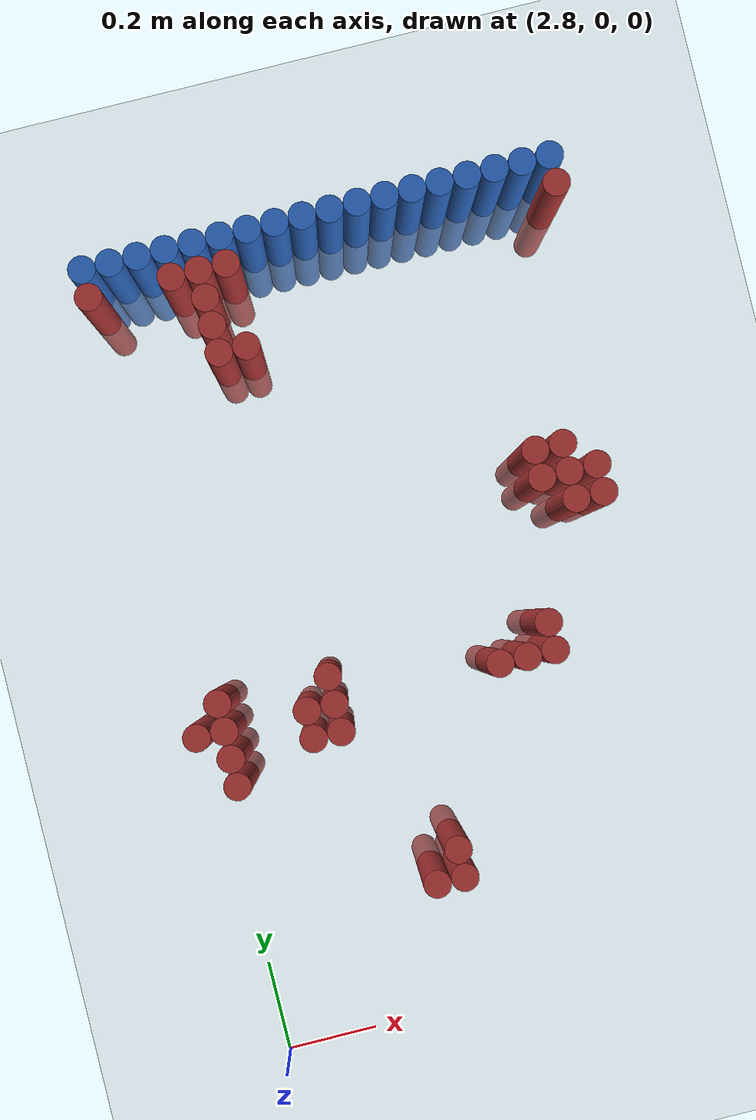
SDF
<sdf version="1.6">
 <world name="default">
  <model name="ground_plane">
   <static>1</static>
   <link name="link">
    <collision name="collision">
     <geometry><plane><normal>0 0 1</normal><size>100 100</size></plane></geometry>
     <surface><friction><ode><mu>100</mu><mu2>50</mu2></ode></friction></surface>
    </collision>
    <visual name="visual">
     <cast_shadows>0</cast_shadows>
     <geometry><plane><normal>0 0 1</normal><size>100 100</size></plane></geometry>
     <material>
      <script><uri>file://media/materials/scripts/gazebo.material</uri><name>Gazebo/Grey</name></script>
     </material>
    </visual>
   </link>
  </model>
  <model name="unit_cylinder_107">
   <static>1</static>
   <pose>2.790000 1.770000 0.000000 0.000000 0.000000 0.000000</pose>
   <link name="link">
    <inertial>
     <mass>1</mass>
     <inertia><ixx>0.145833</ixx><ixy>0</ixy><ixz>0</ixz><iyy>0.145833</iyy><iyz>0</iyz><izz>0.125</izz></inertia>
    </inertial>
    <collision name="collision">
     <geometry><cylinder><radius>0.030000</radius><length>0.5</length></cylinder></geometry>
    </collision>
    <visual name="visual">
     <geometry><cylinder><radius>0.030000</radius><length>0.5</length></cylinder></geometry>
     <material>
      <ambient>0.152000 0.379000 0.720000 1</ambient>
      <diffuse>0.152000 0.379000 0.720000 1</diffuse>
     </material>
     <material>
      <script><name>Gazebo/Grey</name><uri>file://media/materials/scripts/gazebo.material</uri></script>
     </material>
    </visual>
   </link>
  </model>
  <model name="unit_cylinder_108">
   <static>1</static>
   <pose>2.850000 1.770000 0.000000 0.000000 0.000000 0.000000</pose>
   <link name="link">
    <inertial>
     <mass>1</mass>
     <inertia><ixx>0.145833</ixx><ixy>0</ixy><ixz>0</ixz><iyy>0.145833</iyy><iyz>0</iyz><izz>0.125</izz></inertia>
    </inertial>
    <collision name="collision">
     <geometry><cylinder><radius>0.030000</radius><length>0.5</length></cylinder></geometry>
    </collision>
    <visual name="visual">
     <geometry><cylinder><radius>0.030000</radius><length>0.5</length></cylinder></geometry>
     <material>
      <ambient>0.152000 0.379000 0.720000 1</ambient>
      <diffuse>0.152000 0.379000 0.720000 1</diffuse>
     </material>
     <material>
      <script><name>Gazebo/Grey</name><uri>file://media/materials/scripts/gazebo.material</uri></script>
     </material>
    </visual>
   </link>
  </model>
  <model name="unit_cylinder_109">
   <static>1</static>
   <pose>2.910000 1.770000 0.000000 0.000000 0.000000 0.000000</pose>
   <link name="link">
    <inertial>
     <mass>1</mass>
     <inertia><ixx>0.145833</ixx><ixy>0</ixy><ixz>0</ixz><iyy>0.145833</iyy><iyz>0</iyz><izz>0.125</izz></inertia>
    </inertial>
    <collision name="collision">
     <geometry><cylinder><radius>0.030000</radius><length>0.5</length></cylinder></geometry>
    </collision>
    <visual name="visual">
     <geometry><cylinder><radius>0.030000</radius><length>0.5</length></cylinder></geometry>
     <material>
      <ambient>0.152000 0.379000 0.720000 1</ambient>
      <diffuse>0.152000 0.379000 0.720000 1</diffuse>
     </material>
     <material>
      <script><name>Gazebo/Grey</name><uri>file://media/materials/scripts/gazebo.material</uri></script>
     </material>
    </visual>
   </link>
  </model>
  <model name="unit_cylinder_110">
   <static>1</static>
   <pose>2.970000 1.770000 0.000000 0.000000 0.000000 0.000000</pose>
   <link name="link">
    <inertial>
     <mass>1</mass>
     <inertia><ixx>0.145833</ixx><ixy>0</ixy><ixz>0</ixz><iyy>0.145833</iyy><iyz>0</iyz><izz>0.125</izz></inertia>
    </inertial>
    <collision name="collision">
     <geometry><cylinder><radius>0.030000</radius><length>0.5</length></cylinder></geometry>
    </collision>
    <visual name="visual">
     <geometry><cylinder><radius>0.030000</radius><length>0.5</length></cylinder></geometry>
     <material>
      <ambient>0.152000 0.379000 0.720000 1</ambient>
      <diffuse>0.152000 0.379000 0.720000 1</diffuse>
     </material>
     <material>
      <script><name>Gazebo/Grey</name><uri>file://media/materials/scripts/gazebo.material</uri></script>
     </material>
    </visual>
   </link>
  </model>
  <model name="unit_cylinder_111">
   <static>1</static>
   <pose>3.030000 1.770000 0.000000 0.000000 0.000000 0.000000</pose>
   <link name="link">
    <inertial>
     <mass>1</mass>
     <inertia><ixx>0.145833</ixx><ixy>0</ixy><ixz>0</ixz><iyy>0.145833</iyy><iyz>0</iyz><izz>0.125</izz></inertia>
    </inertial>
    <collision name="collision">
     <geometry><cylinder><radius>0.030000</radius><length>0.5</length></cylinder></geometry>
    </collision>
    <visual name="visual">
     <geometry><cylinder><radius>0.030000</radius><length>0.5</length></cylinder></geometry>
     <material>
      <ambient>0.152000 0.379000 0.720000 1</ambient>
      <diffuse>0.152000 0.379000 0.720000 1</diffuse>
     </material>
     <material>
      <script><name>Gazebo/Grey</name><uri>file://media/materials/scripts/gazebo.material</uri></script>
     </material>
    </visual>
   </link>
  </model>
  <model name="unit_cylinder_112">
   <static>1</static>
   <pose>3.090000 1.770000 0.000000 0.000000 0.000000 0.000000</pose>
   <link name="link">
    <inertial>
     <mass>1</mass>
     <inertia><ixx>0.145833</ixx><ixy>0</ixy><ixz>0</ixz><iyy>0.145833</iyy><iyz>0</iyz><izz>0.125</izz></inertia>
    </inertial>
    <collision name="collision">
     <geometry><cylinder><radius>0.030000</radius><length>0.5</length></cylinder></geometry>
    </collision>
    <visual name="visual">
     <geometry><cylinder><radius>0.030000</radius><length>0.5</length></cylinder></geometry>
     <material>
      <ambient>0.152000 0.379000 0.720000 1</ambient>
      <diffuse>0.152000 0.379000 0.720000 1</diffuse>
     </material>
     <material>
      <script><name>Gazebo/Grey</name><uri>file://media/materials/scripts/gazebo.material</uri></script>
     </material>
    </visual>
   </link>
  </model>
  <model name="unit_cylinder_113">
   <static>1</static>
   <pose>3.150000 1.770000 0.000000 0.000000 0.000000 0.000000</pose>
   <link name="link">
    <inertial>
     <mass>1</mass>
     <inertia><ixx>0.145833</ixx><ixy>0</ixy><ixz>0</ixz><iyy>0.145833</iyy><iyz>0</iyz><izz>0.125</izz></inertia>
    </inertial>
    <collision name="collision">
     <geometry><cylinder><radius>0.030000</radius><length>0.5</length></cylinder></geometry>
    </collision>
    <visual name="visual">
     <geometry><cylinder><radius>0.030000</radius><length>0.5</length></cylinder></geometry>
     <material>
      <ambient>0.152000 0.379000 0.720000 1</ambient>
      <diffuse>0.152000 0.379000 0.720000 1</diffuse>
     </material>
     <material>
      <script><name>Gazebo/Grey</name><uri>file://media/materials/scripts/gazebo.material</uri></script>
     </material>
    </visual>
   </link>
  </model>
  <model name="unit_cylinder_114">
   <static>1</static>
   <pose>3.210000 1.770000 0.000000 0.000000 0.000000 0.000000</pose>
   <link name="link">
    <inertial>
     <mass>1</mass>
     <inertia><ixx>0.145833</ixx><ixy>0</ixy><ixz>0</ixz><iyy>0.145833</iyy><iyz>0</iyz><izz>0.125</izz></inertia>
    </inertial>
    <collision name="collision">
     <geometry><cylinder><radius>0.030000</radius><length>0.5</length></cylinder></geometry>
    </collision>
    <visual name="visual">
     <geometry><cylinder><radius>0.030000</radius><length>0.5</length></cylinder></geometry>
     <material>
      <ambient>0.152000 0.379000 0.720000 1</ambient>
      <diffuse>0.152000 0.379000 0.720000 1</diffuse>
     </material>
     <material>
      <script><name>Gazebo/Grey</name><uri>file://media/materials/scripts/gazebo.material</uri></script>
     </material>
    </visual>
   </link>
  </model>
  <model name="unit_cylinder_115">
   <static>1</static>
   <pose>3.270000 1.770000 0.000000 0.000000 0.000000 0.000000</pose>
   <link name="link">
    <inertial>
     <mass>1</mass>
     <inertia><ixx>0.145833</ixx><ixy>0</ixy><ixz>0</ixz><iyy>0.145833</iyy><iyz>0</iyz><izz>0.125</izz></inertia>
    </inertial>
    <collision name="collision">
     <geometry><cylinder><radius>0.030000</radius><length>0.5</length></cylinder></geometry>
    </collision>
    <visual name="visual">
     <geometry><cylinder><radius>0.030000</radius><length>0.5</length></cylinder></geometry>
     <material>
      <ambient>0.152000 0.379000 0.720000 1</ambient>
      <diffuse>0.152000 0.379000 0.720000 1</diffuse>
     </material>
     <material>
      <script><name>Gazebo/Grey</name><uri>file://media/materials/scripts/gazebo.material</uri></script>
     </material>
    </visual>
   </link>
  </model>
  <model name="unit_cylinder_116">
   <static>1</static>
   <pose>3.330000 1.770000 0.000000 0.000000 0.000000 0.000000</pose>
   <link name="link">
    <inertial>
     <mass>1</mass>
     <inertia><ixx>0.145833</ixx><ixy>0</ixy><ixz>0</ixz><iyy>0.145833</iyy><iyz>0</iyz><izz>0.125</izz></inertia>
    </inertial>
    <collision name="collision">
     <geometry><cylinder><radius>0.030000</radius><length>0.5</length></cylinder></geometry>
    </collision>
    <visual name="visual">
     <geometry><cylinder><radius>0.030000</radius><length>0.5</length></cylinder></geometry>
     <material>
      <ambient>0.152000 0.379000 0.720000 1</ambient>
      <diffuse>0.152000 0.379000 0.720000 1</diffuse>
     </material>
     <material>
      <script><name>Gazebo/Grey</name><uri>file://media/materials/scripts/gazebo.material</uri></script>
     </material>
    </visual>
   </link>
  </model>
  <model name="unit_cylinder_117">
   <static>1</static>
   <pose>3.390000 1.770000 0.000000 0.000000 0.000000 0.000000</pose>
   <link name="link">
    <inertial>
     <mass>1</mass>
     <inertia><ixx>0.145833</ixx><ixy>0</ixy><ixz>0</ixz><iyy>0.145833</iyy><iyz>0</iyz><izz>0.125</izz></inertia>
    </inertial>
    <collision name="collision">
     <geometry><cylinder><radius>0.030000</radius><length>0.5</length></cylinder></geometry>
    </collision>
    <visual name="visual">
     <geometry><cylinder><radius>0.030000</radius><length>0.5</length></cylinder></geometry>
     <material>
      <ambient>0.152000 0.379000 0.720000 1</ambient>
      <diffuse>0.152000 0.379000 0.720000 1</diffuse>
     </material>
     <material>
      <script><name>Gazebo/Grey</name><uri>file://media/materials/scripts/gazebo.material</uri></script>
     </material>
    </visual>
   </link>
  </model>
  <model name="unit_cylinder_118">
   <static>1</static>
   <pose>3.450000 1.770000 0.000000 0.000000 0.000000 0.000000</pose>
   <link name="link">
    <inertial>
     <mass>1</mass>
     <inertia><ixx>0.145833</ixx><ixy>0</ixy><ixz>0</ixz><iyy>0.145833</iyy><iyz>0</iyz><izz>0.125</izz></inertia>
    </inertial>
    <collision name="collision">
     <geometry><cylinder><radius>0.030000</radius><length>0.5</length></cylinder></geometry>
    </collision>
    <visual name="visual">
     <geometry><cylinder><radius>0.030000</radius><length>0.5</length></cylinder></geometry>
     <material>
      <ambient>0.152000 0.379000 0.720000 1</ambient>
      <diffuse>0.152000 0.379000 0.720000 1</diffuse>
     </material>
     <material>
      <script><name>Gazebo/Grey</name><uri>file://media/materials/scripts/gazebo.material</uri></script>
     </material>
    </visual>
   </link>
  </model>
  <model name="unit_cylinder_119">
   <static>1</static>
   <pose>3.510000 1.770000 0.000000 0.000000 0.000000 0.000000</pose>
   <link name="link">
    <inertial>
     <mass>1</mass>
     <inertia><ixx>0.145833</ixx><ixy>0</ixy><ixz>0</ixz><iyy>0.145833</iyy><iyz>0</iyz><izz>0.125</izz></inertia>
    </inertial>
    <collision name="collision">
     <geometry><cylinder><radius>0.030000</radius><length>0.5</length></cylinder></geometry>
    </collision>
    <visual name="visual">
     <geometry><cylinder><radius>0.030000</radius><length>0.5</length></cylinder></geometry>
     <material>
      <ambient>0.152000 0.379000 0.720000 1</ambient>
      <diffuse>0.152000 0.379000 0.720000 1</diffuse>
     </material>
     <material>
      <script><name>Gazebo/Grey</name><uri>file://media/materials/scripts/gazebo.material</uri></script>
     </material>
    </visual>
   </link>
  </model>
  <model name="unit_cylinder_120">
   <static>1</static>
   <pose>3.570000 1.770000 0.000000 0.000000 0.000000 0.000000</pose>
   <link name="link">
    <inertial>
     <mass>1</mass>
     <inertia><ixx>0.145833</ixx><ixy>0</ixy><ixz>0</ixz><iyy>0.145833</iyy><iyz>0</iyz><izz>0.125</izz></inertia>
    </inertial>
    <collision name="collision">
     <geometry><cylinder><radius>0.030000</radius><length>0.5</length></cylinder></geometry>
    </collision>
    <visual name="visual">
     <geometry><cylinder><radius>0.030000</radius><length>0.5</length></cylinder></geometry>
     <material>
      <ambient>0.152000 0.379000 0.720000 1</ambient>
      <diffuse>0.152000 0.379000 0.720000 1</diffuse>
     </material>
     <material>
      <script><name>Gazebo/Grey</name><uri>file://media/materials/scripts/gazebo.material</uri></script>
     </material>
    </visual>
   </link>
  </model>
  <model name="unit_cylinder_121">
   <static>1</static>
   <pose>3.630000 1.770000 0.000000 0.000000 0.000000 0.000000</pose>
   <link name="link">
    <inertial>
     <mass>1</mass>
     <inertia><ixx>0.145833</ixx><ixy>0</ixy><ixz>0</ixz><iyy>0.145833</iyy><iyz>0</iyz><izz>0.125</izz></inertia>
    </inertial>
    <collision name="collision">
     <geometry><cylinder><radius>0.030000</radius><length>0.5</length></cylinder></geometry>
    </collision>
    <visual name="visual">
     <geometry><cylinder><radius>0.030000</radius><length>0.5</length></cylinder></geometry>
     <material>
      <ambient>0.152000 0.379000 0.720000 1</ambient>
      <diffuse>0.152000 0.379000 0.720000 1</diffuse>
     </material>
     <material>
      <script><name>Gazebo/Grey</name><uri>file://media/materials/scripts/gazebo.material</uri></script>
     </material>
    </visual>
   </link>
  </model>
  <model name="unit_cylinder_122">
   <static>1</static>
   <pose>3.690000 1.770000 0.000000 0.000000 0.000000 0.000000</pose>
   <link name="link">
    <inertial>
     <mass>1</mass>
     <inertia><ixx>0.145833</ixx><ixy>0</ixy><ixz>0</ixz><iyy>0.145833</iyy><iyz>0</iyz><izz>0.125</izz></inertia>
    </inertial>
    <collision name="collision">
     <geometry><cylinder><radius>0.030000</radius><length>0.5</length></cylinder></geometry>
    </collision>
    <visual name="visual">
     <geometry><cylinder><radius>0.030000</radius><length>0.5</length></cylinder></geometry>
     <material>
      <ambient>0.152000 0.379000 0.720000 1</ambient>
      <diffuse>0.152000 0.379000 0.720000 1</diffuse>
     </material>
     <material>
      <script><name>Gazebo/Grey</name><uri>file://media/materials/scripts/gazebo.material</uri></script>
     </material>
    </visual>
   </link>
  </model>
  <model name="unit_cylinder_123">
   <static>1</static>
   <pose>3.750000 1.770000 0.000000 0.000000 0.000000 0.000000</pose>
   <link name="link">
    <inertial>
     <mass>1</mass>
     <inertia><ixx>0.145833</ixx><ixy>0</ixy><ixz>0</ixz><iyy>0.145833</iyy><iyz>0</iyz><izz>0.125</izz></inertia>
    </inertial>
    <collision name="collision">
     <geometry><cylinder><radius>0.030000</radius><length>0.5</length></cylinder></geometry>
    </collision>
    <visual name="visual">
     <geometry><cylinder><radius>0.030000</radius><length>0.5</length></cylinder></geometry>
     <material>
      <ambient>0.152000 0.379000 0.720000 1</ambient>
      <diffuse>0.152000 0.379000 0.720000 1</diffuse>
     </material>
     <material>
      <script><name>Gazebo/Grey</name><uri>file://media/materials/scripts/gazebo.material</uri></script>
     </material>
    </visual>
   </link>
  </model>
  <model name="unit_cylinder_124">
   <static>1</static>
   <pose>3.810000 1.770000 0.000000 0.000000 0.000000 0.000000</pose>
   <link name="link">
    <inertial>
     <mass>1</mass>
     <inertia><ixx>0.145833</ixx><ixy>0</ixy><ixz>0</ixz><iyy>0.145833</iyy><iyz>0</iyz><izz>0.125</izz></inertia>
    </inertial>
    <collision name="collision">
     <geometry><cylinder><radius>0.030000</radius><length>0.5</length></cylinder></geometry>
    </collision>
    <visual name="visual">
     <geometry><cylinder><radius>0.030000</radius><length>0.5</length></cylinder></geometry>
     <material>
      <ambient>0.152000 0.379000 0.720000 1</ambient>
      <diffuse>0.152000 0.379000 0.720000 1</diffuse>
     </material>
     <material>
      <script><name>Gazebo/Grey</name><uri>file://media/materials/scripts/gazebo.material</uri></script>
     </material>
    </visual>
   </link>
  </model>
  <model name="unit_cylinder_128">
   <static>1</static>
   <pose>2.790000 1.710000 0.000000 0.000000 0.000000 0.000000</pose>
   <link name="link">
    <inertial>
     <mass>1</mass>
     <inertia><ixx>0.145833</ixx><ixy>0</ixy><ixz>0</ixz><iyy>0.145833</iyy><iyz>0</iyz><izz>0.125</izz></inertia>
    </inertial>
    <collision name="collision">
     <geometry><cylinder><radius>0.030000</radius><length>0.5</length></cylinder></geometry>
    </collision>
    <visual name="visual">
     <geometry><cylinder><radius>0.030000</radius><length>0.5</length></cylinder></geometry>
     <material>
      <ambient>0.648000 0.192000 0.192000 1</ambient>
      <diffuse>0.648000 0.192000 0.192000 1</diffuse>
     </material>
     <material>
      <script><name>Gazebo/Grey</name><uri>file://media/materials/scripts/gazebo.material</uri></script>
     </material>
    </visual>
   </link>
  </model>
  <model name="unit_cylinder_129">
   <static>1</static>
   <pose>2.970000 1.710000 0.000000 0.000000 0.000000 0.000000</pose>
   <link name="link">
    <inertial>
     <mass>1</mass>
     <inertia><ixx>0.145833</ixx><ixy>0</ixy><ixz>0</ixz><iyy>0.145833</iyy><iyz>0</iyz><izz>0.125</izz></inertia>
    </inertial>
    <collision name="collision">
     <geometry><cylinder><radius>0.030000</radius><length>0.5</length></cylinder></geometry>
    </collision>
    <visual name="visual">
     <geometry><cylinder><radius>0.030000</radius><length>0.5</length></cylinder></geometry>
     <material>
      <ambient>0.648000 0.192000 0.192000 1</ambient>
      <diffuse>0.648000 0.192000 0.192000 1</diffuse>
     </material>
     <material>
      <script><name>Gazebo/Grey</name><uri>file://media/materials/scripts/gazebo.material</uri></script>
     </material>
    </visual>
   </link>
  </model>
  <model name="unit_cylinder_130">
   <static>1</static>
   <pose>3.030000 1.710000 0.000000 0.000000 0.000000 0.000000</pose>
   <link name="link">
    <inertial>
     <mass>1</mass>
     <inertia><ixx>0.145833</ixx><ixy>0</ixy><ixz>0</ixz><iyy>0.145833</iyy><iyz>0</iyz><izz>0.125</izz></inertia>
    </inertial>
    <collision name="collision">
     <geometry><cylinder><radius>0.030000</radius><length>0.5</length></cylinder></geometry>
    </collision>
    <visual name="visual">
     <geometry><cylinder><radius>0.030000</radius><length>0.5</length></cylinder></geometry>
     <material>
      <ambient>0.648000 0.192000 0.192000 1</ambient>
      <diffuse>0.648000 0.192000 0.192000 1</diffuse>
     </material>
     <material>
      <script><name>Gazebo/Grey</name><uri>file://media/materials/scripts/gazebo.material</uri></script>
     </material>
    </visual>
   </link>
  </model>
  <model name="unit_cylinder_131">
   <static>1</static>
   <pose>3.090000 1.710000 0.000000 0.000000 0.000000 0.000000</pose>
   <link name="link">
    <inertial>
     <mass>1</mass>
     <inertia><ixx>0.145833</ixx><ixy>0</ixy><ixz>0</ixz><iyy>0.145833</iyy><iyz>0</iyz><izz>0.125</izz></inertia>
    </inertial>
    <collision name="collision">
     <geometry><cylinder><radius>0.030000</radius><length>0.5</length></cylinder></geometry>
    </collision>
    <visual name="visual">
     <geometry><cylinder><radius>0.030000</radius><length>0.5</length></cylinder></geometry>
     <material>
      <ambient>0.648000 0.192000 0.192000 1</ambient>
      <diffuse>0.648000 0.192000 0.192000 1</diffuse>
     </material>
     <material>
      <script><name>Gazebo/Grey</name><uri>file://media/materials/scripts/gazebo.material</uri></script>
     </material>
    </visual>
   </link>
  </model>
  <model name="unit_cylinder_132">
   <static>1</static>
   <pose>3.810000 1.710000 0.000000 0.000000 0.000000 0.000000</pose>
   <link name="link">
    <inertial>
     <mass>1</mass>
     <inertia><ixx>0.145833</ixx><ixy>0</ixy><ixz>0</ixz><iyy>0.145833</iyy><iyz>0</iyz><izz>0.125</izz></inertia>
    </inertial>
    <collision name="collision">
     <geometry><cylinder><radius>0.030000</radius><length>0.5</length></cylinder></geometry>
    </collision>
    <visual name="visual">
     <geometry><cylinder><radius>0.030000</radius><length>0.5</length></cylinder></geometry>
     <material>
      <ambient>0.648000 0.192000 0.192000 1</ambient>
      <diffuse>0.648000 0.192000 0.192000 1</diffuse>
     </material>
     <material>
      <script><name>Gazebo/Grey</name><uri>file://media/materials/scripts/gazebo.material</uri></script>
     </material>
    </visual>
   </link>
  </model>
  <model name="unit_cylinder_135">
   <static>1</static>
   <pose>3.030000 1.650000 0.000000 0.000000 0.000000 0.000000</pose>
   <link name="link">
    <inertial>
     <mass>1</mass>
     <inertia><ixx>0.145833</ixx><ixy>0</ixy><ixz>0</ixz><iyy>0.145833</iyy><iyz>0</iyz><izz>0.125</izz></inertia>
    </inertial>
    <collision name="collision">
     <geometry><cylinder><radius>0.030000</radius><length>0.5</length></cylinder></geometry>
    </collision>
    <visual name="visual">
     <geometry><cylinder><radius>0.030000</radius><length>0.5</length></cylinder></geometry>
     <material>
      <ambient>0.648000 0.192000 0.192000 1</ambient>
      <diffuse>0.648000 0.192000 0.192000 1</diffuse>
     </material>
     <material>
      <script><name>Gazebo/Grey</name><uri>file://media/materials/scripts/gazebo.material</uri></script>
     </material>
    </visual>
   </link>
  </model>
  <model name="unit_cylinder_138">
   <static>1</static>
   <pose>3.030000 1.590000 0.000000 0.000000 0.000000 0.000000</pose>
   <link name="link">
    <inertial>
     <mass>1</mass>
     <inertia><ixx>0.145833</ixx><ixy>0</ixy><ixz>0</ixz><iyy>0.145833</iyy><iyz>0</iyz><izz>0.125</izz></inertia>
    </inertial>
    <collision name="collision">
     <geometry><cylinder><radius>0.030000</radius><length>0.5</length></cylinder></geometry>
    </collision>
    <visual name="visual">
     <geometry><cylinder><radius>0.030000</radius><length>0.5</length></cylinder></geometry>
     <material>
      <ambient>0.648000 0.192000 0.192000 1</ambient>
      <diffuse>0.648000 0.192000 0.192000 1</diffuse>
     </material>
     <material>
      <script><name>Gazebo/Grey</name><uri>file://media/materials/scripts/gazebo.material</uri></script>
     </material>
    </visual>
   </link>
  </model>
  <model name="unit_cylinder_141">
   <static>1</static>
   <pose>3.030000 1.530000 0.000000 0.000000 0.000000 0.000000</pose>
   <link name="link">
    <inertial>
     <mass>1</mass>
     <inertia><ixx>0.145833</ixx><ixy>0</ixy><ixz>0</ixz><iyy>0.145833</iyy><iyz>0</iyz><izz>0.125</izz></inertia>
    </inertial>
    <collision name="collision">
     <geometry><cylinder><radius>0.030000</radius><length>0.5</length></cylinder></geometry>
    </collision>
    <visual name="visual">
     <geometry><cylinder><radius>0.030000</radius><length>0.5</length></cylinder></geometry>
     <material>
      <ambient>0.648000 0.192000 0.192000 1</ambient>
      <diffuse>0.648000 0.192000 0.192000 1</diffuse>
     </material>
     <material>
      <script><name>Gazebo/Grey</name><uri>file://media/materials/scripts/gazebo.material</uri></script>
     </material>
    </visual>
   </link>
  </model>
  <model name="unit_cylinder_142">
   <static>1</static>
   <pose>3.090000 1.530000 0.000000 0.000000 0.000000 0.000000</pose>
   <link name="link">
    <inertial>
     <mass>1</mass>
     <inertia><ixx>0.145833</ixx><ixy>0</ixy><ixz>0</ixz><iyy>0.145833</iyy><iyz>0</iyz><izz>0.125</izz></inertia>
    </inertial>
    <collision name="collision">
     <geometry><cylinder><radius>0.030000</radius><length>0.5</length></cylinder></geometry>
    </collision>
    <visual name="visual">
     <geometry><cylinder><radius>0.030000</radius><length>0.5</length></cylinder></geometry>
     <material>
      <ambient>0.648000 0.192000 0.192000 1</ambient>
      <diffuse>0.648000 0.192000 0.192000 1</diffuse>
     </material>
     <material>
      <script><name>Gazebo/Grey</name><uri>file://media/materials/scripts/gazebo.material</uri></script>
     </material>
    </visual>
   </link>
  </model>
  <model name="unit_cylinder_145">
   <static>1</static>
   <pose>3.630000 1.170000 0.000000 0.000000 0.000000 0.000000</pose>
   <link name="link">
    <inertial>
     <mass>1</mass>
     <inertia><ixx>0.145833</ixx><ixy>0</ixy><ixz>0</ixz><iyy>0.145833</iyy><iyz>0</iyz><izz>0.125</izz></inertia>
    </inertial>
    <collision name="collision">
     <geometry><cylinder><radius>0.030000</radius><length>0.5</length></cylinder></geometry>
    </collision>
    <visual name="visual">
     <geometry><cylinder><radius>0.030000</radius><length>0.5</length></cylinder></geometry>
     <material>
      <ambient>0.648000 0.192000 0.192000 1</ambient>
      <diffuse>0.648000 0.192000 0.192000 1</diffuse>
     </material>
     <material>
      <script><name>Gazebo/Grey</name><uri>file://media/materials/scripts/gazebo.material</uri></script>
     </material>
    </visual>
   </link>
  </model>
  <model name="unit_cylinder_146">
   <static>1</static>
   <pose>3.690000 1.170000 0.000000 0.000000 0.000000 0.000000</pose>
   <link name="link">
    <inertial>
     <mass>1</mass>
     <inertia><ixx>0.145833</ixx><ixy>0</ixy><ixz>0</ixz><iyy>0.145833</iyy><iyz>0</iyz><izz>0.125</izz></inertia>
    </inertial>
    <collision name="collision">
     <geometry><cylinder><radius>0.030000</radius><length>0.5</length></cylinder></geometry>
    </collision>
    <visual name="visual">
     <geometry><cylinder><radius>0.030000</radius><length>0.5</length></cylinder></geometry>
     <material>
      <ambient>0.648000 0.192000 0.192000 1</ambient>
      <diffuse>0.648000 0.192000 0.192000 1</diffuse>
     </material>
     <material>
      <script><name>Gazebo/Grey</name><uri>file://media/materials/scripts/gazebo.material</uri></script>
     </material>
    </visual>
   </link>
  </model>
  <model name="unit_cylinder_147">
   <static>1</static>
   <pose>3.630000 1.110000 0.000000 0.000000 0.000000 0.000000</pose>
   <link name="link">
    <inertial>
     <mass>1</mass>
     <inertia><ixx>0.145833</ixx><ixy>0</ixy><ixz>0</ixz><iyy>0.145833</iyy><iyz>0</iyz><izz>0.125</izz></inertia>
    </inertial>
    <collision name="collision">
     <geometry><cylinder><radius>0.030000</radius><length>0.5</length></cylinder></geometry>
    </collision>
    <visual name="visual">
     <geometry><cylinder><radius>0.030000</radius><length>0.5</length></cylinder></geometry>
     <material>
      <ambient>0.648000 0.192000 0.192000 1</ambient>
      <diffuse>0.648000 0.192000 0.192000 1</diffuse>
     </material>
     <material>
      <script><name>Gazebo/Grey</name><uri>file://media/materials/scripts/gazebo.material</uri></script>
     </material>
    </visual>
   </link>
  </model>
  <model name="unit_cylinder_148">
   <static>1</static>
   <pose>3.690000 1.110000 0.000000 0.000000 0.000000 0.000000</pose>
   <link name="link">
    <inertial>
     <mass>1</mass>
     <inertia><ixx>0.145833</ixx><ixy>0</ixy><ixz>0</ixz><iyy>0.145833</iyy><iyz>0</iyz><izz>0.125</izz></inertia>
    </inertial>
    <collision name="collision">
     <geometry><cylinder><radius>0.030000</radius><length>0.5</length></cylinder></geometry>
    </collision>
    <visual name="visual">
     <geometry><cylinder><radius>0.030000</radius><length>0.5</length></cylinder></geometry>
     <material>
      <ambient>0.648000 0.192000 0.192000 1</ambient>
      <diffuse>0.648000 0.192000 0.192000 1</diffuse>
     </material>
     <material>
      <script><name>Gazebo/Grey</name><uri>file://media/materials/scripts/gazebo.material</uri></script>
     </material>
    </visual>
   </link>
  </model>
  <model name="unit_cylinder_149">
   <static>1</static>
   <pose>3.750000 1.110000 0.000000 0.000000 0.000000 0.000000</pose>
   <link name="link">
    <inertial>
     <mass>1</mass>
     <inertia><ixx>0.145833</ixx><ixy>0</ixy><ixz>0</ixz><iyy>0.145833</iyy><iyz>0</iyz><izz>0.125</izz></inertia>
    </inertial>
    <collision name="collision">
     <geometry><cylinder><radius>0.030000</radius><length>0.5</length></cylinder></geometry>
    </collision>
    <visual name="visual">
     <geometry><cylinder><radius>0.030000</radius><length>0.5</length></cylinder></geometry>
     <material>
      <ambient>0.648000 0.192000 0.192000 1</ambient>
      <diffuse>0.648000 0.192000 0.192000 1</diffuse>
     </material>
     <material>
      <script><name>Gazebo/Grey</name><uri>file://media/materials/scripts/gazebo.material</uri></script>
     </material>
    </visual>
   </link>
  </model>
  <model name="unit_cylinder_150">
   <static>1</static>
   <pose>3.690000 1.050000 0.000000 0.000000 0.000000 0.000000</pose>
   <link name="link">
    <inertial>
     <mass>1</mass>
     <inertia><ixx>0.145833</ixx><ixy>0</ixy><ixz>0</ixz><iyy>0.145833</iyy><iyz>0</iyz><izz>0.125</izz></inertia>
    </inertial>
    <collision name="collision">
     <geometry><cylinder><radius>0.030000</radius><length>0.5</length></cylinder></geometry>
    </collision>
    <visual name="visual">
     <geometry><cylinder><radius>0.030000</radius><length>0.5</length></cylinder></geometry>
     <material>
      <ambient>0.648000 0.192000 0.192000 1</ambient>
      <diffuse>0.648000 0.192000 0.192000 1</diffuse>
     </material>
     <material>
      <script><name>Gazebo/Grey</name><uri>file://media/materials/scripts/gazebo.material</uri></script>
     </material>
    </visual>
   </link>
  </model>
  <model name="unit_cylinder_151">
   <static>1</static>
   <pose>3.750000 1.050000 0.000000 0.000000 0.000000 0.000000</pose>
   <link name="link">
    <inertial>
     <mass>1</mass>
     <inertia><ixx>0.145833</ixx><ixy>0</ixy><ixz>0</ixz><iyy>0.145833</iyy><iyz>0</iyz><izz>0.125</izz></inertia>
    </inertial>
    <collision name="collision">
     <geometry><cylinder><radius>0.030000</radius><length>0.5</length></cylinder></geometry>
    </collision>
    <visual name="visual">
     <geometry><cylinder><radius>0.030000</radius><length>0.5</length></cylinder></geometry>
     <material>
      <ambient>0.648000 0.192000 0.192000 1</ambient>
      <diffuse>0.648000 0.192000 0.192000 1</diffuse>
     </material>
     <material>
      <script><name>Gazebo/Grey</name><uri>file://media/materials/scripts/gazebo.material</uri></script>
     </material>
    </visual>
   </link>
  </model>
  <model name="unit_cylinder_159">
   <static>1</static>
   <pose>2.850000 0.810000 0.000000 0.000000 0.000000 0.000000</pose>
   <link name="link">
    <inertial>
     <mass>1</mass>
     <inertia><ixx>0.145833</ixx><ixy>0</ixy><ixz>0</ixz><iyy>0.145833</iyy><iyz>0</iyz><izz>0.125</izz></inertia>
    </inertial>
    <collision name="collision">
     <geometry><cylinder><radius>0.030000</radius><length>0.5</length></cylinder></geometry>
    </collision>
    <visual name="visual">
     <geometry><cylinder><radius>0.030000</radius><length>0.5</length></cylinder></geometry>
     <material>
      <ambient>0.648000 0.192000 0.192000 1</ambient>
      <diffuse>0.648000 0.192000 0.192000 1</diffuse>
     </material>
     <material>
      <script><name>Gazebo/Grey</name><uri>file://media/materials/scripts/gazebo.material</uri></script>
     </material>
    </visual>
   </link>
  </model>
  <model name="unit_cylinder_160">
   <static>1</static>
   <pose>3.090000 0.810000 0.000000 0.000000 0.000000 0.000000</pose>
   <link name="link">
    <inertial>
     <mass>1</mass>
     <inertia><ixx>0.145833</ixx><ixy>0</ixy><ixz>0</ixz><iyy>0.145833</iyy><iyz>0</iyz><izz>0.125</izz></inertia>
    </inertial>
    <collision name="collision">
     <geometry><cylinder><radius>0.030000</radius><length>0.5</length></cylinder></geometry>
    </collision>
    <visual name="visual">
     <geometry><cylinder><radius>0.030000</radius><length>0.5</length></cylinder></geometry>
     <material>
      <ambient>0.648000 0.192000 0.192000 1</ambient>
      <diffuse>0.648000 0.192000 0.192000 1</diffuse>
     </material>
     <material>
      <script><name>Gazebo/Grey</name><uri>file://media/materials/scripts/gazebo.material</uri></script>
     </material>
    </visual>
   </link>
  </model>
  <model name="unit_cylinder_161">
   <static>1</static>
   <pose>3.570000 0.810000 0.000000 0.000000 0.000000 0.000000</pose>
   <link name="link">
    <inertial>
     <mass>1</mass>
     <inertia><ixx>0.145833</ixx><ixy>0</ixy><ixz>0</ixz><iyy>0.145833</iyy><iyz>0</iyz><izz>0.125</izz></inertia>
    </inertial>
    <collision name="collision">
     <geometry><cylinder><radius>0.030000</radius><length>0.5</length></cylinder></geometry>
    </collision>
    <visual name="visual">
     <geometry><cylinder><radius>0.030000</radius><length>0.5</length></cylinder></geometry>
     <material>
      <ambient>0.648000 0.192000 0.192000 1</ambient>
      <diffuse>0.648000 0.192000 0.192000 1</diffuse>
     </material>
     <material>
      <script><name>Gazebo/Grey</name><uri>file://media/materials/scripts/gazebo.material</uri></script>
     </material>
    </visual>
   </link>
  </model>
  <model name="unit_cylinder_164">
   <static>1</static>
   <pose>2.790000 0.750000 0.000000 0.000000 0.000000 0.000000</pose>
   <link name="link">
    <inertial>
     <mass>1</mass>
     <inertia><ixx>0.145833</ixx><ixy>0</ixy><ixz>0</ixz><iyy>0.145833</iyy><iyz>0</iyz><izz>0.125</izz></inertia>
    </inertial>
    <collision name="collision">
     <geometry><cylinder><radius>0.030000</radius><length>0.5</length></cylinder></geometry>
    </collision>
    <visual name="visual">
     <geometry><cylinder><radius>0.030000</radius><length>0.5</length></cylinder></geometry>
     <material>
      <ambient>0.648000 0.192000 0.192000 1</ambient>
      <diffuse>0.648000 0.192000 0.192000 1</diffuse>
     </material>
     <material>
      <script><name>Gazebo/Grey</name><uri>file://media/materials/scripts/gazebo.material</uri></script>
     </material>
    </visual>
   </link>
  </model>
  <model name="unit_cylinder_165">
   <static>1</static>
   <pose>2.850000 0.750000 0.000000 0.000000 0.000000 0.000000</pose>
   <link name="link">
    <inertial>
     <mass>1</mass>
     <inertia><ixx>0.145833</ixx><ixy>0</ixy><ixz>0</ixz><iyy>0.145833</iyy><iyz>0</iyz><izz>0.125</izz></inertia>
    </inertial>
    <collision name="collision">
     <geometry><cylinder><radius>0.030000</radius><length>0.5</length></cylinder></geometry>
    </collision>
    <visual name="visual">
     <geometry><cylinder><radius>0.030000</radius><length>0.5</length></cylinder></geometry>
     <material>
      <ambient>0.648000 0.192000 0.192000 1</ambient>
      <diffuse>0.648000 0.192000 0.192000 1</diffuse>
     </material>
     <material>
      <script><name>Gazebo/Grey</name><uri>file://media/materials/scripts/gazebo.material</uri></script>
     </material>
    </visual>
   </link>
  </model>
  <model name="unit_cylinder_166">
   <static>1</static>
   <pose>3.030000 0.750000 0.000000 0.000000 0.000000 0.000000</pose>
   <link name="link">
    <inertial>
     <mass>1</mass>
     <inertia><ixx>0.145833</ixx><ixy>0</ixy><ixz>0</ixz><iyy>0.145833</iyy><iyz>0</iyz><izz>0.125</izz></inertia>
    </inertial>
    <collision name="collision">
     <geometry><cylinder><radius>0.030000</radius><length>0.5</length></cylinder></geometry>
    </collision>
    <visual name="visual">
     <geometry><cylinder><radius>0.030000</radius><length>0.5</length></cylinder></geometry>
     <material>
      <ambient>0.648000 0.192000 0.192000 1</ambient>
      <diffuse>0.648000 0.192000 0.192000 1</diffuse>
     </material>
     <material>
      <script><name>Gazebo/Grey</name><uri>file://media/materials/scripts/gazebo.material</uri></script>
     </material>
    </visual>
   </link>
  </model>
  <model name="unit_cylinder_167">
   <static>1</static>
   <pose>3.090000 0.750000 0.000000 0.000000 0.000000 0.000000</pose>
   <link name="link">
    <inertial>
     <mass>1</mass>
     <inertia><ixx>0.145833</ixx><ixy>0</ixy><ixz>0</ixz><iyy>0.145833</iyy><iyz>0</iyz><izz>0.125</izz></inertia>
    </inertial>
    <collision name="collision">
     <geometry><cylinder><radius>0.030000</radius><length>0.5</length></cylinder></geometry>
    </collision>
    <visual name="visual">
     <geometry><cylinder><radius>0.030000</radius><length>0.5</length></cylinder></geometry>
     <material>
      <ambient>0.648000 0.192000 0.192000 1</ambient>
      <diffuse>0.648000 0.192000 0.192000 1</diffuse>
     </material>
     <material>
      <script><name>Gazebo/Grey</name><uri>file://media/materials/scripts/gazebo.material</uri></script>
     </material>
    </visual>
   </link>
  </model>
  <model name="unit_cylinder_168">
   <static>1</static>
   <pose>3.450000 0.750000 0.000000 0.000000 0.000000 0.000000</pose>
   <link name="link">
    <inertial>
     <mass>1</mass>
     <inertia><ixx>0.145833</ixx><ixy>0</ixy><ixz>0</ixz><iyy>0.145833</iyy><iyz>0</iyz><izz>0.125</izz></inertia>
    </inertial>
    <collision name="collision">
     <geometry><cylinder><radius>0.030000</radius><length>0.5</length></cylinder></geometry>
    </collision>
    <visual name="visual">
     <geometry><cylinder><radius>0.030000</radius><length>0.5</length></cylinder></geometry>
     <material>
      <ambient>0.648000 0.192000 0.192000 1</ambient>
      <diffuse>0.648000 0.192000 0.192000 1</diffuse>
     </material>
     <material>
      <script><name>Gazebo/Grey</name><uri>file://media/materials/scripts/gazebo.material</uri></script>
     </material>
    </visual>
   </link>
  </model>
  <model name="unit_cylinder_169">
   <static>1</static>
   <pose>3.510000 0.750000 0.000000 0.000000 0.000000 0.000000</pose>
   <link name="link">
    <inertial>
     <mass>1</mass>
     <inertia><ixx>0.145833</ixx><ixy>0</ixy><ixz>0</ixz><iyy>0.145833</iyy><iyz>0</iyz><izz>0.125</izz></inertia>
    </inertial>
    <collision name="collision">
     <geometry><cylinder><radius>0.030000</radius><length>0.5</length></cylinder></geometry>
    </collision>
    <visual name="visual">
     <geometry><cylinder><radius>0.030000</radius><length>0.5</length></cylinder></geometry>
     <material>
      <ambient>0.648000 0.192000 0.192000 1</ambient>
      <diffuse>0.648000 0.192000 0.192000 1</diffuse>
     </material>
     <material>
      <script><name>Gazebo/Grey</name><uri>file://media/materials/scripts/gazebo.material</uri></script>
     </material>
    </visual>
   </link>
  </model>
  <model name="unit_cylinder_170">
   <static>1</static>
   <pose>3.570000 0.750000 0.000000 0.000000 0.000000 0.000000</pose>
   <link name="link">
    <inertial>
     <mass>1</mass>
     <inertia><ixx>0.145833</ixx><ixy>0</ixy><ixz>0</ixz><iyy>0.145833</iyy><iyz>0</iyz><izz>0.125</izz></inertia>
    </inertial>
    <collision name="collision">
     <geometry><cylinder><radius>0.030000</radius><length>0.5</length></cylinder></geometry>
    </collision>
    <visual name="visual">
     <geometry><cylinder><radius>0.030000</radius><length>0.5</length></cylinder></geometry>
     <material>
      <ambient>0.648000 0.192000 0.192000 1</ambient>
      <diffuse>0.648000 0.192000 0.192000 1</diffuse>
     </material>
     <material>
      <script><name>Gazebo/Grey</name><uri>file://media/materials/scripts/gazebo.material</uri></script>
     </material>
    </visual>
   </link>
  </model>
  <model name="unit_cylinder_173">
   <static>1</static>
   <pose>2.850000 0.690000 0.000000 0.000000 0.000000 0.000000</pose>
   <link name="link">
    <inertial>
     <mass>1</mass>
     <inertia><ixx>0.145833</ixx><ixy>0</ixy><ixz>0</ixz><iyy>0.145833</iyy><iyz>0</iyz><izz>0.125</izz></inertia>
    </inertial>
    <collision name="collision">
     <geometry><cylinder><radius>0.030000</radius><length>0.5</length></cylinder></geometry>
    </collision>
    <visual name="visual">
     <geometry><cylinder><radius>0.030000</radius><length>0.5</length></cylinder></geometry>
     <material>
      <ambient>0.648000 0.192000 0.192000 1</ambient>
      <diffuse>0.648000 0.192000 0.192000 1</diffuse>
     </material>
     <material>
      <script><name>Gazebo/Grey</name><uri>file://media/materials/scripts/gazebo.material</uri></script>
     </material>
    </visual>
   </link>
  </model>
  <model name="unit_cylinder_174">
   <static>1</static>
   <pose>3.030000 0.690000 0.000000 0.000000 0.000000 0.000000</pose>
   <link name="link">
    <inertial>
     <mass>1</mass>
     <inertia><ixx>0.145833</ixx><ixy>0</ixy><ixz>0</ixz><iyy>0.145833</iyy><iyz>0</iyz><izz>0.125</izz></inertia>
    </inertial>
    <collision name="collision">
     <geometry><cylinder><radius>0.030000</radius><length>0.5</length></cylinder></geometry>
    </collision>
    <visual name="visual">
     <geometry><cylinder><radius>0.030000</radius><length>0.5</length></cylinder></geometry>
     <material>
      <ambient>0.648000 0.192000 0.192000 1</ambient>
      <diffuse>0.648000 0.192000 0.192000 1</diffuse>
     </material>
     <material>
      <script><name>Gazebo/Grey</name><uri>file://media/materials/scripts/gazebo.material</uri></script>
     </material>
    </visual>
   </link>
  </model>
  <model name="unit_cylinder_175">
   <static>1</static>
   <pose>3.090000 0.690000 0.000000 0.000000 0.000000 0.000000</pose>
   <link name="link">
    <inertial>
     <mass>1</mass>
     <inertia><ixx>0.145833</ixx><ixy>0</ixy><ixz>0</ixz><iyy>0.145833</iyy><iyz>0</iyz><izz>0.125</izz></inertia>
    </inertial>
    <collision name="collision">
     <geometry><cylinder><radius>0.030000</radius><length>0.5</length></cylinder></geometry>
    </collision>
    <visual name="visual">
     <geometry><cylinder><radius>0.030000</radius><length>0.5</length></cylinder></geometry>
     <material>
      <ambient>0.648000 0.192000 0.192000 1</ambient>
      <diffuse>0.648000 0.192000 0.192000 1</diffuse>
     </material>
     <material>
      <script><name>Gazebo/Grey</name><uri>file://media/materials/scripts/gazebo.material</uri></script>
     </material>
    </visual>
   </link>
  </model>
  <model name="unit_cylinder_182">
   <static>1</static>
   <pose>2.850000 0.630000 0.000000 0.000000 0.000000 0.000000</pose>
   <link name="link">
    <inertial>
     <mass>1</mass>
     <inertia><ixx>0.145833</ixx><ixy>0</ixy><ixz>0</ixz><iyy>0.145833</iyy><iyz>0</iyz><izz>0.125</izz></inertia>
    </inertial>
    <collision name="collision">
     <geometry><cylinder><radius>0.030000</radius><length>0.5</length></cylinder></geometry>
    </collision>
    <visual name="visual">
     <geometry><cylinder><radius>0.030000</radius><length>0.5</length></cylinder></geometry>
     <material>
      <ambient>0.648000 0.192000 0.192000 1</ambient>
      <diffuse>0.648000 0.192000 0.192000 1</diffuse>
     </material>
     <material>
      <script><name>Gazebo/Grey</name><uri>file://media/materials/scripts/gazebo.material</uri></script>
     </material>
    </visual>
   </link>
  </model>
  <model name="unit_cylinder_199">
   <static>1</static>
   <pose>3.270000 0.390000 0.000000 0.000000 0.000000 0.000000</pose>
   <link name="link">
    <inertial>
     <mass>1</mass>
     <inertia><ixx>0.145833</ixx><ixy>0</ixy><ixz>0</ixz><iyy>0.145833</iyy><iyz>0</iyz><izz>0.125</izz></inertia>
    </inertial>
    <collision name="collision">
     <geometry><cylinder><radius>0.030000</radius><length>0.5</length></cylinder></geometry>
    </collision>
    <visual name="visual">
     <geometry><cylinder><radius>0.030000</radius><length>0.5</length></cylinder></geometry>
     <material>
      <ambient>0.648000 0.192000 0.192000 1</ambient>
      <diffuse>0.648000 0.192000 0.192000 1</diffuse>
     </material>
     <material>
      <script><name>Gazebo/Grey</name><uri>file://media/materials/scripts/gazebo.material</uri></script>
     </material>
    </visual>
   </link>
  </model>
  <model name="unit_cylinder_204">
   <static>1</static>
   <pose>3.210000 0.330000 0.000000 0.000000 0.000000 0.000000</pose>
   <link name="link">
    <inertial>
     <mass>1</mass>
     <inertia><ixx>0.145833</ixx><ixy>0</ixy><ixz>0</ixz><iyy>0.145833</iyy><iyz>0</iyz><izz>0.125</izz></inertia>
    </inertial>
    <collision name="collision">
     <geometry><cylinder><radius>0.030000</radius><length>0.5</length></cylinder></geometry>
    </collision>
    <visual name="visual">
     <geometry><cylinder><radius>0.030000</radius><length>0.5</length></cylinder></geometry>
     <material>
      <ambient>0.648000 0.192000 0.192000 1</ambient>
      <diffuse>0.648000 0.192000 0.192000 1</diffuse>
     </material>
     <material>
      <script><name>Gazebo/Grey</name><uri>file://media/materials/scripts/gazebo.material</uri></script>
     </material>
    </visual>
   </link>
  </model>
  <model name="unit_cylinder_205">
   <static>1</static>
   <pose>3.270000 0.330000 0.000000 0.000000 0.000000 0.000000</pose>
   <link name="link">
    <inertial>
     <mass>1</mass>
     <inertia><ixx>0.145833</ixx><ixy>0</ixy><ixz>0</ixz><iyy>0.145833</iyy><iyz>0</iyz><izz>0.125</izz></inertia>
    </inertial>
    <collision name="collision">
     <geometry><cylinder><radius>0.030000</radius><length>0.5</length></cylinder></geometry>
    </collision>
    <visual name="visual">
     <geometry><cylinder><radius>0.030000</radius><length>0.5</length></cylinder></geometry>
     <material>
      <ambient>0.648000 0.192000 0.192000 1</ambient>
      <diffuse>0.648000 0.192000 0.192000 1</diffuse>
     </material>
     <material>
      <script><name>Gazebo/Grey</name><uri>file://media/materials/scripts/gazebo.material</uri></script>
     </material>
    </visual>
   </link>
  </model>
 </world>
</sdf>
